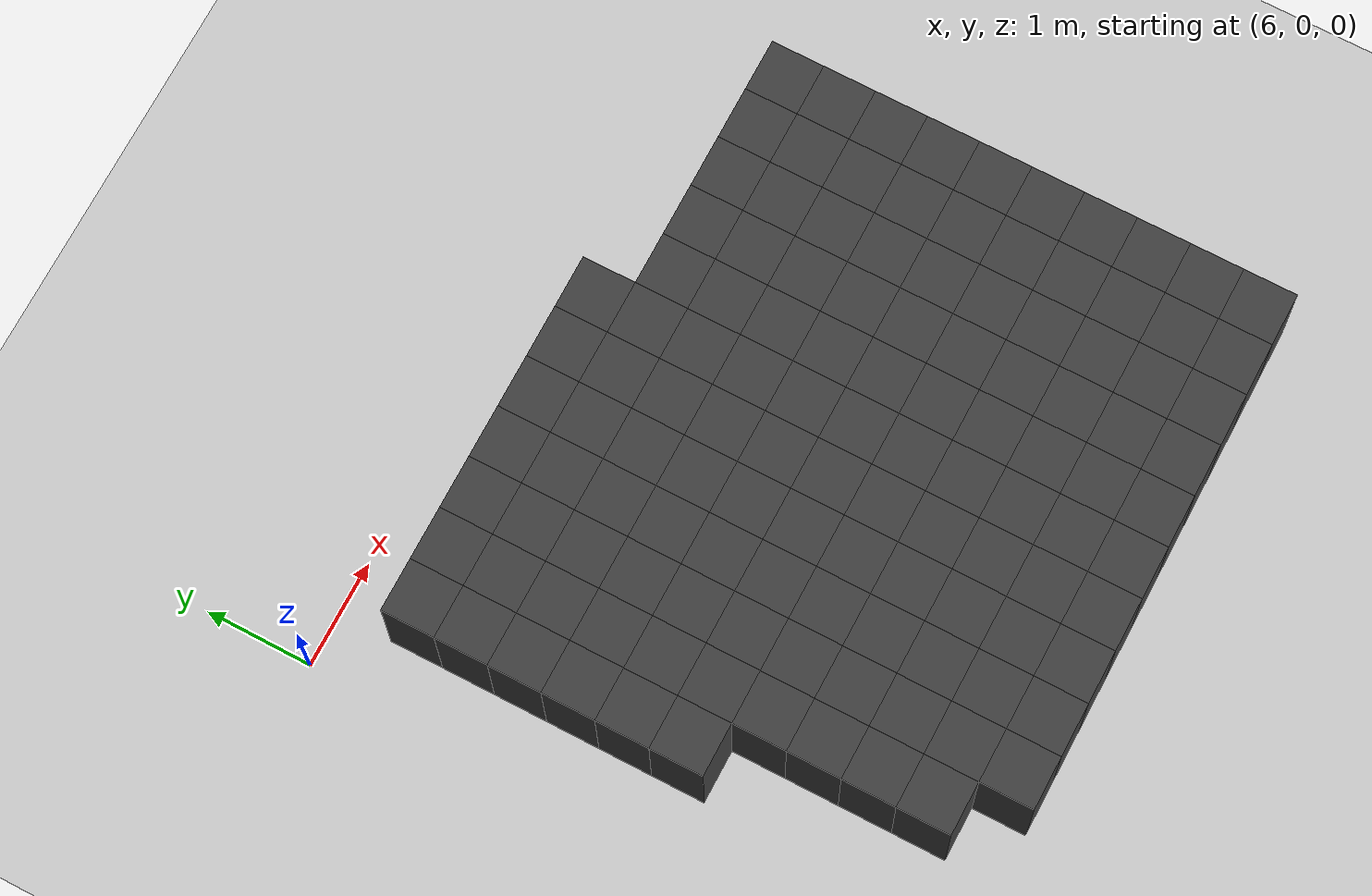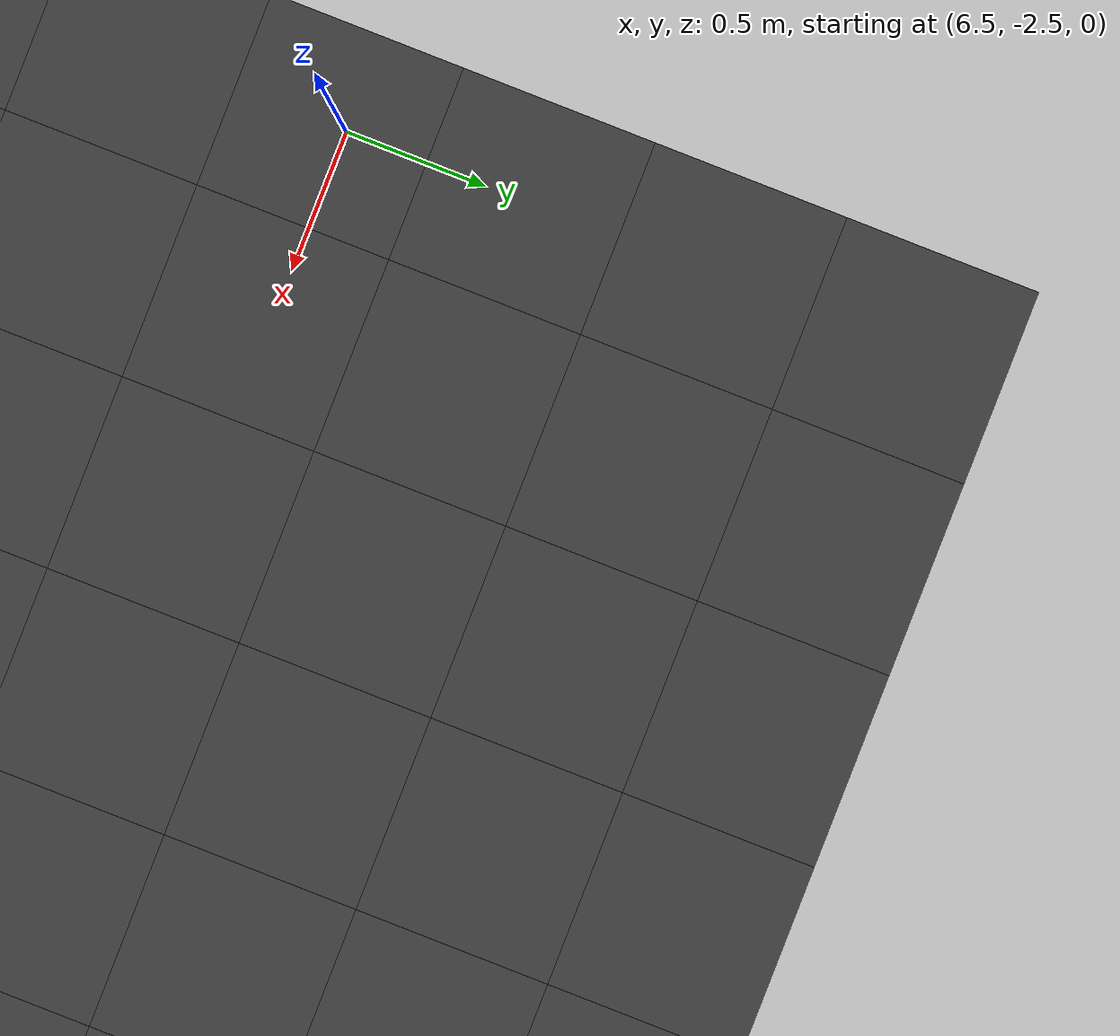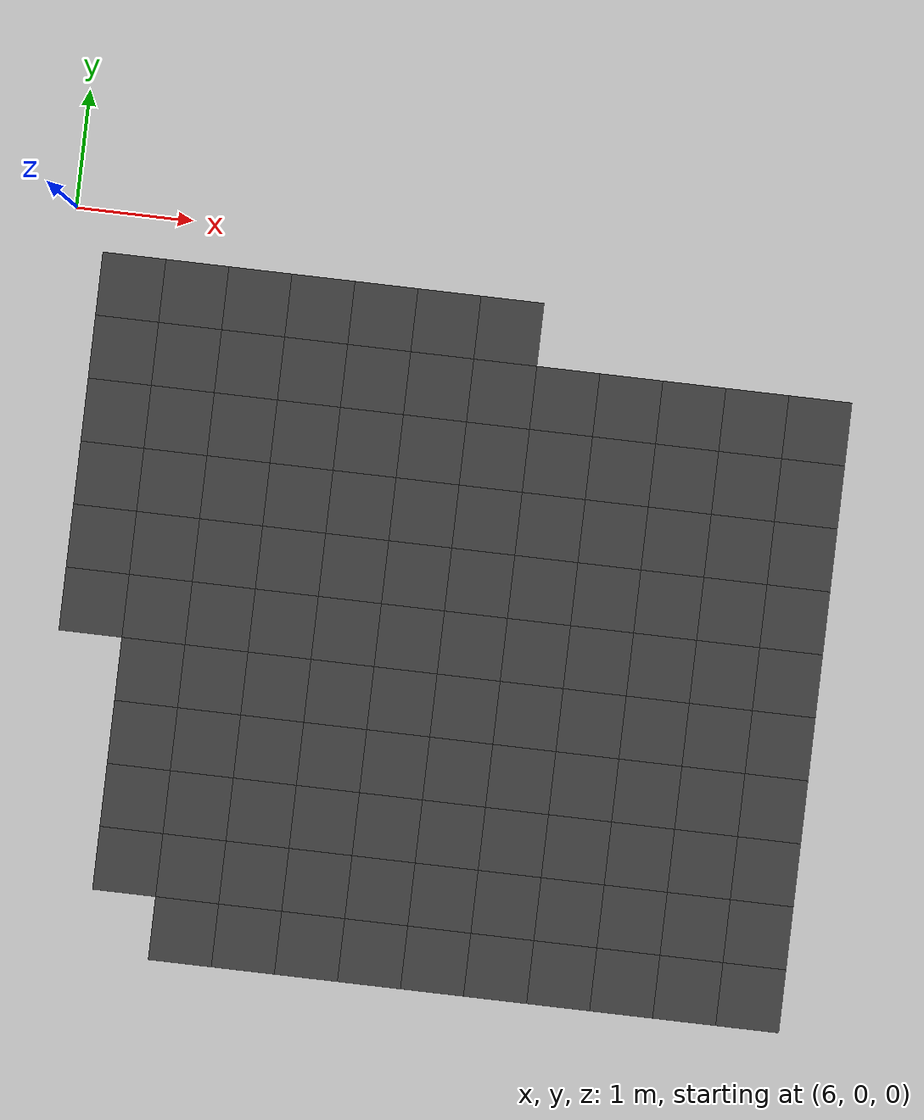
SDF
<sdf version="1.7">
 <world name="map_14510">
  <model name="ground_plane">
   <static>true</static>
   <link name="link">
    <collision name="collision">
     <geometry><plane><normal>0 0 1</normal><size>200 200</size></plane></geometry>
    </collision>
    <visual name="visual">
     <geometry><plane><normal>0 0 1</normal><size>200 200</size></plane></geometry>
     <material><ambient>0.8 0.8 0.8 1</ambient><diffuse>0.8 0.8 0.8 1</diffuse></material>
    </visual>
   </link>
  </model>
  <model name="maze_environment">
   <static>true</static>
   <link name="wall_927">
    <pose>6.750 -0.750 0.500 0 0 0</pose>
    <collision name="col"><geometry><box><size>0.5 0.5 1.0</size></box></geometry></collision>
    <visual name="vis">
     <geometry><box><size>0.5 0.5 1.0</size></box></geometry>
     <material><ambient>0.15 0.15 0.15 1</ambient><diffuse>0.25 0.25 0.25 1</diffuse></material>
    </visual>
   </link>
   <link name="wall_928">
    <pose>7.250 -0.750 0.500 0 0 0</pose>
    <collision name="col"><geometry><box><size>0.5 0.5 1.0</size></box></geometry></collision>
    <visual name="vis">
     <geometry><box><size>0.5 0.5 1.0</size></box></geometry>
     <material><ambient>0.15 0.15 0.15 1</ambient><diffuse>0.25 0.25 0.25 1</diffuse></material>
    </visual>
   </link>
   <link name="wall_929">
    <pose>7.750 -0.750 0.500 0 0 0</pose>
    <collision name="col"><geometry><box><size>0.5 0.5 1.0</size></box></geometry></collision>
    <visual name="vis">
     <geometry><box><size>0.5 0.5 1.0</size></box></geometry>
     <material><ambient>0.15 0.15 0.15 1</ambient><diffuse>0.25 0.25 0.25 1</diffuse></material>
    </visual>
   </link>
   <link name="wall_930">
    <pose>8.250 -0.750 0.500 0 0 0</pose>
    <collision name="col"><geometry><box><size>0.5 0.5 1.0</size></box></geometry></collision>
    <visual name="vis">
     <geometry><box><size>0.5 0.5 1.0</size></box></geometry>
     <material><ambient>0.15 0.15 0.15 1</ambient><diffuse>0.25 0.25 0.25 1</diffuse></material>
    </visual>
   </link>
   <link name="wall_931">
    <pose>8.750 -0.750 0.500 0 0 0</pose>
    <collision name="col"><geometry><box><size>0.5 0.5 1.0</size></box></geometry></collision>
    <visual name="vis">
     <geometry><box><size>0.5 0.5 1.0</size></box></geometry>
     <material><ambient>0.15 0.15 0.15 1</ambient><diffuse>0.25 0.25 0.25 1</diffuse></material>
    </visual>
   </link>
   <link name="wall_932">
    <pose>9.250 -0.750 0.500 0 0 0</pose>
    <collision name="col"><geometry><box><size>0.5 0.5 1.0</size></box></geometry></collision>
    <visual name="vis">
     <geometry><box><size>0.5 0.5 1.0</size></box></geometry>
     <material><ambient>0.15 0.15 0.15 1</ambient><diffuse>0.25 0.25 0.25 1</diffuse></material>
    </visual>
   </link>
   <link name="wall_933">
    <pose>9.750 -0.750 0.500 0 0 0</pose>
    <collision name="col"><geometry><box><size>0.5 0.5 1.0</size></box></geometry></collision>
    <visual name="vis">
     <geometry><box><size>0.5 0.5 1.0</size></box></geometry>
     <material><ambient>0.15 0.15 0.15 1</ambient><diffuse>0.25 0.25 0.25 1</diffuse></material>
    </visual>
   </link>
   <link name="wall_960">
    <pose>6.750 -1.250 0.500 0 0 0</pose>
    <collision name="col"><geometry><box><size>0.5 0.5 1.0</size></box></geometry></collision>
    <visual name="vis">
     <geometry><box><size>0.5 0.5 1.0</size></box></geometry>
     <material><ambient>0.15 0.15 0.15 1</ambient><diffuse>0.25 0.25 0.25 1</diffuse></material>
    </visual>
   </link>
   <link name="wall_961">
    <pose>7.250 -1.250 0.500 0 0 0</pose>
    <collision name="col"><geometry><box><size>0.5 0.5 1.0</size></box></geometry></collision>
    <visual name="vis">
     <geometry><box><size>0.5 0.5 1.0</size></box></geometry>
     <material><ambient>0.15 0.15 0.15 1</ambient><diffuse>0.25 0.25 0.25 1</diffuse></material>
    </visual>
   </link>
   <link name="wall_962">
    <pose>7.750 -1.250 0.500 0 0 0</pose>
    <collision name="col"><geometry><box><size>0.5 0.5 1.0</size></box></geometry></collision>
    <visual name="vis">
     <geometry><box><size>0.5 0.5 1.0</size></box></geometry>
     <material><ambient>0.15 0.15 0.15 1</ambient><diffuse>0.25 0.25 0.25 1</diffuse></material>
    </visual>
   </link>
   <link name="wall_963">
    <pose>8.250 -1.250 0.500 0 0 0</pose>
    <collision name="col"><geometry><box><size>0.5 0.5 1.0</size></box></geometry></collision>
    <visual name="vis">
     <geometry><box><size>0.5 0.5 1.0</size></box></geometry>
     <material><ambient>0.15 0.15 0.15 1</ambient><diffuse>0.25 0.25 0.25 1</diffuse></material>
    </visual>
   </link>
   <link name="wall_964">
    <pose>8.750 -1.250 0.500 0 0 0</pose>
    <collision name="col"><geometry><box><size>0.5 0.5 1.0</size></box></geometry></collision>
    <visual name="vis">
     <geometry><box><size>0.5 0.5 1.0</size></box></geometry>
     <material><ambient>0.15 0.15 0.15 1</ambient><diffuse>0.25 0.25 0.25 1</diffuse></material>
    </visual>
   </link>
   <link name="wall_965">
    <pose>9.250 -1.250 0.500 0 0 0</pose>
    <collision name="col"><geometry><box><size>0.5 0.5 1.0</size></box></geometry></collision>
    <visual name="vis">
     <geometry><box><size>0.5 0.5 1.0</size></box></geometry>
     <material><ambient>0.15 0.15 0.15 1</ambient><diffuse>0.25 0.25 0.25 1</diffuse></material>
    </visual>
   </link>
   <link name="wall_966">
    <pose>9.750 -1.250 0.500 0 0 0</pose>
    <collision name="col"><geometry><box><size>0.5 0.5 1.0</size></box></geometry></collision>
    <visual name="vis">
     <geometry><box><size>0.5 0.5 1.0</size></box></geometry>
     <material><ambient>0.15 0.15 0.15 1</ambient><diffuse>0.25 0.25 0.25 1</diffuse></material>
    </visual>
   </link>
   <link name="wall_967">
    <pose>10.250 -1.250 0.500 0 0 0</pose>
    <collision name="col"><geometry><box><size>0.5 0.5 1.0</size></box></geometry></collision>
    <visual name="vis">
     <geometry><box><size>0.5 0.5 1.0</size></box></geometry>
     <material><ambient>0.15 0.15 0.15 1</ambient><diffuse>0.25 0.25 0.25 1</diffuse></material>
    </visual>
   </link>
   <link name="wall_968">
    <pose>10.750 -1.250 0.500 0 0 0</pose>
    <collision name="col"><geometry><box><size>0.5 0.5 1.0</size></box></geometry></collision>
    <visual name="vis">
     <geometry><box><size>0.5 0.5 1.0</size></box></geometry>
     <material><ambient>0.15 0.15 0.15 1</ambient><diffuse>0.25 0.25 0.25 1</diffuse></material>
    </visual>
   </link>
   <link name="wall_969">
    <pose>11.250 -1.250 0.500 0 0 0</pose>
    <collision name="col"><geometry><box><size>0.5 0.5 1.0</size></box></geometry></collision>
    <visual name="vis">
     <geometry><box><size>0.5 0.5 1.0</size></box></geometry>
     <material><ambient>0.15 0.15 0.15 1</ambient><diffuse>0.25 0.25 0.25 1</diffuse></material>
    </visual>
   </link>
   <link name="wall_970">
    <pose>11.750 -1.250 0.500 0 0 0</pose>
    <collision name="col"><geometry><box><size>0.5 0.5 1.0</size></box></geometry></collision>
    <visual name="vis">
     <geometry><box><size>0.5 0.5 1.0</size></box></geometry>
     <material><ambient>0.15 0.15 0.15 1</ambient><diffuse>0.25 0.25 0.25 1</diffuse></material>
    </visual>
   </link>
   <link name="wall_971">
    <pose>12.250 -1.250 0.500 0 0 0</pose>
    <collision name="col"><geometry><box><size>0.5 0.5 1.0</size></box></geometry></collision>
    <visual name="vis">
     <geometry><box><size>0.5 0.5 1.0</size></box></geometry>
     <material><ambient>0.15 0.15 0.15 1</ambient><diffuse>0.25 0.25 0.25 1</diffuse></material>
    </visual>
   </link>
   <link name="wall_987">
    <pose>6.750 -1.750 0.500 0 0 0</pose>
    <collision name="col"><geometry><box><size>0.5 0.5 1.0</size></box></geometry></collision>
    <visual name="vis">
     <geometry><box><size>0.5 0.5 1.0</size></box></geometry>
     <material><ambient>0.15 0.15 0.15 1</ambient><diffuse>0.25 0.25 0.25 1</diffuse></material>
    </visual>
   </link>
   <link name="wall_988">
    <pose>7.250 -1.750 0.500 0 0 0</pose>
    <collision name="col"><geometry><box><size>0.5 0.5 1.0</size></box></geometry></collision>
    <visual name="vis">
     <geometry><box><size>0.5 0.5 1.0</size></box></geometry>
     <material><ambient>0.15 0.15 0.15 1</ambient><diffuse>0.25 0.25 0.25 1</diffuse></material>
    </visual>
   </link>
   <link name="wall_989">
    <pose>7.750 -1.750 0.500 0 0 0</pose>
    <collision name="col"><geometry><box><size>0.5 0.5 1.0</size></box></geometry></collision>
    <visual name="vis">
     <geometry><box><size>0.5 0.5 1.0</size></box></geometry>
     <material><ambient>0.15 0.15 0.15 1</ambient><diffuse>0.25 0.25 0.25 1</diffuse></material>
    </visual>
   </link>
   <link name="wall_990">
    <pose>8.250 -1.750 0.500 0 0 0</pose>
    <collision name="col"><geometry><box><size>0.5 0.5 1.0</size></box></geometry></collision>
    <visual name="vis">
     <geometry><box><size>0.5 0.5 1.0</size></box></geometry>
     <material><ambient>0.15 0.15 0.15 1</ambient><diffuse>0.25 0.25 0.25 1</diffuse></material>
    </visual>
   </link>
   <link name="wall_991">
    <pose>8.750 -1.750 0.500 0 0 0</pose>
    <collision name="col"><geometry><box><size>0.5 0.5 1.0</size></box></geometry></collision>
    <visual name="vis">
     <geometry><box><size>0.5 0.5 1.0</size></box></geometry>
     <material><ambient>0.15 0.15 0.15 1</ambient><diffuse>0.25 0.25 0.25 1</diffuse></material>
    </visual>
   </link>
   <link name="wall_992">
    <pose>9.250 -1.750 0.500 0 0 0</pose>
    <collision name="col"><geometry><box><size>0.5 0.5 1.0</size></box></geometry></collision>
    <visual name="vis">
     <geometry><box><size>0.5 0.5 1.0</size></box></geometry>
     <material><ambient>0.15 0.15 0.15 1</ambient><diffuse>0.25 0.25 0.25 1</diffuse></material>
    </visual>
   </link>
   <link name="wall_993">
    <pose>9.750 -1.750 0.500 0 0 0</pose>
    <collision name="col"><geometry><box><size>0.5 0.5 1.0</size></box></geometry></collision>
    <visual name="vis">
     <geometry><box><size>0.5 0.5 1.0</size></box></geometry>
     <material><ambient>0.15 0.15 0.15 1</ambient><diffuse>0.25 0.25 0.25 1</diffuse></material>
    </visual>
   </link>
   <link name="wall_994">
    <pose>10.250 -1.750 0.500 0 0 0</pose>
    <collision name="col"><geometry><box><size>0.5 0.5 1.0</size></box></geometry></collision>
    <visual name="vis">
     <geometry><box><size>0.5 0.5 1.0</size></box></geometry>
     <material><ambient>0.15 0.15 0.15 1</ambient><diffuse>0.25 0.25 0.25 1</diffuse></material>
    </visual>
   </link>
   <link name="wall_995">
    <pose>10.750 -1.750 0.500 0 0 0</pose>
    <collision name="col"><geometry><box><size>0.5 0.5 1.0</size></box></geometry></collision>
    <visual name="vis">
     <geometry><box><size>0.5 0.5 1.0</size></box></geometry>
     <material><ambient>0.15 0.15 0.15 1</ambient><diffuse>0.25 0.25 0.25 1</diffuse></material>
    </visual>
   </link>
   <link name="wall_996">
    <pose>11.250 -1.750 0.500 0 0 0</pose>
    <collision name="col"><geometry><box><size>0.5 0.5 1.0</size></box></geometry></collision>
    <visual name="vis">
     <geometry><box><size>0.5 0.5 1.0</size></box></geometry>
     <material><ambient>0.15 0.15 0.15 1</ambient><diffuse>0.25 0.25 0.25 1</diffuse></material>
    </visual>
   </link>
   <link name="wall_997">
    <pose>11.750 -1.750 0.500 0 0 0</pose>
    <collision name="col"><geometry><box><size>0.5 0.5 1.0</size></box></geometry></collision>
    <visual name="vis">
     <geometry><box><size>0.5 0.5 1.0</size></box></geometry>
     <material><ambient>0.15 0.15 0.15 1</ambient><diffuse>0.25 0.25 0.25 1</diffuse></material>
    </visual>
   </link>
   <link name="wall_998">
    <pose>12.250 -1.750 0.500 0 0 0</pose>
    <collision name="col"><geometry><box><size>0.5 0.5 1.0</size></box></geometry></collision>
    <visual name="vis">
     <geometry><box><size>0.5 0.5 1.0</size></box></geometry>
     <material><ambient>0.15 0.15 0.15 1</ambient><diffuse>0.25 0.25 0.25 1</diffuse></material>
    </visual>
   </link>
   <link name="wall_1014">
    <pose>6.750 -2.250 0.500 0 0 0</pose>
    <collision name="col"><geometry><box><size>0.5 0.5 1.0</size></box></geometry></collision>
    <visual name="vis">
     <geometry><box><size>0.5 0.5 1.0</size></box></geometry>
     <material><ambient>0.15 0.15 0.15 1</ambient><diffuse>0.25 0.25 0.25 1</diffuse></material>
    </visual>
   </link>
   <link name="wall_1015">
    <pose>7.250 -2.250 0.500 0 0 0</pose>
    <collision name="col"><geometry><box><size>0.5 0.5 1.0</size></box></geometry></collision>
    <visual name="vis">
     <geometry><box><size>0.5 0.5 1.0</size></box></geometry>
     <material><ambient>0.15 0.15 0.15 1</ambient><diffuse>0.25 0.25 0.25 1</diffuse></material>
    </visual>
   </link>
   <link name="wall_1016">
    <pose>7.750 -2.250 0.500 0 0 0</pose>
    <collision name="col"><geometry><box><size>0.5 0.5 1.0</size></box></geometry></collision>
    <visual name="vis">
     <geometry><box><size>0.5 0.5 1.0</size></box></geometry>
     <material><ambient>0.15 0.15 0.15 1</ambient><diffuse>0.25 0.25 0.25 1</diffuse></material>
    </visual>
   </link>
   <link name="wall_1017">
    <pose>8.250 -2.250 0.500 0 0 0</pose>
    <collision name="col"><geometry><box><size>0.5 0.5 1.0</size></box></geometry></collision>
    <visual name="vis">
     <geometry><box><size>0.5 0.5 1.0</size></box></geometry>
     <material><ambient>0.15 0.15 0.15 1</ambient><diffuse>0.25 0.25 0.25 1</diffuse></material>
    </visual>
   </link>
   <link name="wall_1018">
    <pose>8.750 -2.250 0.500 0 0 0</pose>
    <collision name="col"><geometry><box><size>0.5 0.5 1.0</size></box></geometry></collision>
    <visual name="vis">
     <geometry><box><size>0.5 0.5 1.0</size></box></geometry>
     <material><ambient>0.15 0.15 0.15 1</ambient><diffuse>0.25 0.25 0.25 1</diffuse></material>
    </visual>
   </link>
   <link name="wall_1019">
    <pose>9.250 -2.250 0.500 0 0 0</pose>
    <collision name="col"><geometry><box><size>0.5 0.5 1.0</size></box></geometry></collision>
    <visual name="vis">
     <geometry><box><size>0.5 0.5 1.0</size></box></geometry>
     <material><ambient>0.15 0.15 0.15 1</ambient><diffuse>0.25 0.25 0.25 1</diffuse></material>
    </visual>
   </link>
   <link name="wall_1020">
    <pose>9.750 -2.250 0.500 0 0 0</pose>
    <collision name="col"><geometry><box><size>0.5 0.5 1.0</size></box></geometry></collision>
    <visual name="vis">
     <geometry><box><size>0.5 0.5 1.0</size></box></geometry>
     <material><ambient>0.15 0.15 0.15 1</ambient><diffuse>0.25 0.25 0.25 1</diffuse></material>
    </visual>
   </link>
   <link name="wall_1021">
    <pose>10.250 -2.250 0.500 0 0 0</pose>
    <collision name="col"><geometry><box><size>0.5 0.5 1.0</size></box></geometry></collision>
    <visual name="vis">
     <geometry><box><size>0.5 0.5 1.0</size></box></geometry>
     <material><ambient>0.15 0.15 0.15 1</ambient><diffuse>0.25 0.25 0.25 1</diffuse></material>
    </visual>
   </link>
   <link name="wall_1022">
    <pose>10.750 -2.250 0.500 0 0 0</pose>
    <collision name="col"><geometry><box><size>0.5 0.5 1.0</size></box></geometry></collision>
    <visual name="vis">
     <geometry><box><size>0.5 0.5 1.0</size></box></geometry>
     <material><ambient>0.15 0.15 0.15 1</ambient><diffuse>0.25 0.25 0.25 1</diffuse></material>
    </visual>
   </link>
   <link name="wall_1023">
    <pose>11.250 -2.250 0.500 0 0 0</pose>
    <collision name="col"><geometry><box><size>0.5 0.5 1.0</size></box></geometry></collision>
    <visual name="vis">
     <geometry><box><size>0.5 0.5 1.0</size></box></geometry>
     <material><ambient>0.15 0.15 0.15 1</ambient><diffuse>0.25 0.25 0.25 1</diffuse></material>
    </visual>
   </link>
   <link name="wall_1024">
    <pose>11.750 -2.250 0.500 0 0 0</pose>
    <collision name="col"><geometry><box><size>0.5 0.5 1.0</size></box></geometry></collision>
    <visual name="vis">
     <geometry><box><size>0.5 0.5 1.0</size></box></geometry>
     <material><ambient>0.15 0.15 0.15 1</ambient><diffuse>0.25 0.25 0.25 1</diffuse></material>
    </visual>
   </link>
   <link name="wall_1025">
    <pose>12.250 -2.250 0.500 0 0 0</pose>
    <collision name="col"><geometry><box><size>0.5 0.5 1.0</size></box></geometry></collision>
    <visual name="vis">
     <geometry><box><size>0.5 0.5 1.0</size></box></geometry>
     <material><ambient>0.15 0.15 0.15 1</ambient><diffuse>0.25 0.25 0.25 1</diffuse></material>
    </visual>
   </link>
   <link name="wall_1042">
    <pose>6.750 -2.750 0.500 0 0 0</pose>
    <collision name="col"><geometry><box><size>0.5 0.5 1.0</size></box></geometry></collision>
    <visual name="vis">
     <geometry><box><size>0.5 0.5 1.0</size></box></geometry>
     <material><ambient>0.15 0.15 0.15 1</ambient><diffuse>0.25 0.25 0.25 1</diffuse></material>
    </visual>
   </link>
   <link name="wall_1043">
    <pose>7.250 -2.750 0.500 0 0 0</pose>
    <collision name="col"><geometry><box><size>0.5 0.5 1.0</size></box></geometry></collision>
    <visual name="vis">
     <geometry><box><size>0.5 0.5 1.0</size></box></geometry>
     <material><ambient>0.15 0.15 0.15 1</ambient><diffuse>0.25 0.25 0.25 1</diffuse></material>
    </visual>
   </link>
   <link name="wall_1044">
    <pose>7.750 -2.750 0.500 0 0 0</pose>
    <collision name="col"><geometry><box><size>0.5 0.5 1.0</size></box></geometry></collision>
    <visual name="vis">
     <geometry><box><size>0.5 0.5 1.0</size></box></geometry>
     <material><ambient>0.15 0.15 0.15 1</ambient><diffuse>0.25 0.25 0.25 1</diffuse></material>
    </visual>
   </link>
   <link name="wall_1045">
    <pose>8.250 -2.750 0.500 0 0 0</pose>
    <collision name="col"><geometry><box><size>0.5 0.5 1.0</size></box></geometry></collision>
    <visual name="vis">
     <geometry><box><size>0.5 0.5 1.0</size></box></geometry>
     <material><ambient>0.15 0.15 0.15 1</ambient><diffuse>0.25 0.25 0.25 1</diffuse></material>
    </visual>
   </link>
   <link name="wall_1046">
    <pose>8.750 -2.750 0.500 0 0 0</pose>
    <collision name="col"><geometry><box><size>0.5 0.5 1.0</size></box></geometry></collision>
    <visual name="vis">
     <geometry><box><size>0.5 0.5 1.0</size></box></geometry>
     <material><ambient>0.15 0.15 0.15 1</ambient><diffuse>0.25 0.25 0.25 1</diffuse></material>
    </visual>
   </link>
   <link name="wall_1047">
    <pose>9.250 -2.750 0.500 0 0 0</pose>
    <collision name="col"><geometry><box><size>0.5 0.5 1.0</size></box></geometry></collision>
    <visual name="vis">
     <geometry><box><size>0.5 0.5 1.0</size></box></geometry>
     <material><ambient>0.15 0.15 0.15 1</ambient><diffuse>0.25 0.25 0.25 1</diffuse></material>
    </visual>
   </link>
   <link name="wall_1048">
    <pose>9.750 -2.750 0.500 0 0 0</pose>
    <collision name="col"><geometry><box><size>0.5 0.5 1.0</size></box></geometry></collision>
    <visual name="vis">
     <geometry><box><size>0.5 0.5 1.0</size></box></geometry>
     <material><ambient>0.15 0.15 0.15 1</ambient><diffuse>0.25 0.25 0.25 1</diffuse></material>
    </visual>
   </link>
   <link name="wall_1049">
    <pose>10.250 -2.750 0.500 0 0 0</pose>
    <collision name="col"><geometry><box><size>0.5 0.5 1.0</size></box></geometry></collision>
    <visual name="vis">
     <geometry><box><size>0.5 0.5 1.0</size></box></geometry>
     <material><ambient>0.15 0.15 0.15 1</ambient><diffuse>0.25 0.25 0.25 1</diffuse></material>
    </visual>
   </link>
   <link name="wall_1050">
    <pose>10.750 -2.750 0.500 0 0 0</pose>
    <collision name="col"><geometry><box><size>0.5 0.5 1.0</size></box></geometry></collision>
    <visual name="vis">
     <geometry><box><size>0.5 0.5 1.0</size></box></geometry>
     <material><ambient>0.15 0.15 0.15 1</ambient><diffuse>0.25 0.25 0.25 1</diffuse></material>
    </visual>
   </link>
   <link name="wall_1051">
    <pose>11.250 -2.750 0.500 0 0 0</pose>
    <collision name="col"><geometry><box><size>0.5 0.5 1.0</size></box></geometry></collision>
    <visual name="vis">
     <geometry><box><size>0.5 0.5 1.0</size></box></geometry>
     <material><ambient>0.15 0.15 0.15 1</ambient><diffuse>0.25 0.25 0.25 1</diffuse></material>
    </visual>
   </link>
   <link name="wall_1052">
    <pose>11.750 -2.750 0.500 0 0 0</pose>
    <collision name="col"><geometry><box><size>0.5 0.5 1.0</size></box></geometry></collision>
    <visual name="vis">
     <geometry><box><size>0.5 0.5 1.0</size></box></geometry>
     <material><ambient>0.15 0.15 0.15 1</ambient><diffuse>0.25 0.25 0.25 1</diffuse></material>
    </visual>
   </link>
   <link name="wall_1053">
    <pose>12.250 -2.750 0.500 0 0 0</pose>
    <collision name="col"><geometry><box><size>0.5 0.5 1.0</size></box></geometry></collision>
    <visual name="vis">
     <geometry><box><size>0.5 0.5 1.0</size></box></geometry>
     <material><ambient>0.15 0.15 0.15 1</ambient><diffuse>0.25 0.25 0.25 1</diffuse></material>
    </visual>
   </link>
   <link name="wall_1078">
    <pose>6.750 -3.250 0.500 0 0 0</pose>
    <collision name="col"><geometry><box><size>0.5 0.5 1.0</size></box></geometry></collision>
    <visual name="vis">
     <geometry><box><size>0.5 0.5 1.0</size></box></geometry>
     <material><ambient>0.15 0.15 0.15 1</ambient><diffuse>0.25 0.25 0.25 1</diffuse></material>
    </visual>
   </link>
   <link name="wall_1079">
    <pose>7.250 -3.250 0.500 0 0 0</pose>
    <collision name="col"><geometry><box><size>0.5 0.5 1.0</size></box></geometry></collision>
    <visual name="vis">
     <geometry><box><size>0.5 0.5 1.0</size></box></geometry>
     <material><ambient>0.15 0.15 0.15 1</ambient><diffuse>0.25 0.25 0.25 1</diffuse></material>
    </visual>
   </link>
   <link name="wall_1080">
    <pose>7.750 -3.250 0.500 0 0 0</pose>
    <collision name="col"><geometry><box><size>0.5 0.5 1.0</size></box></geometry></collision>
    <visual name="vis">
     <geometry><box><size>0.5 0.5 1.0</size></box></geometry>
     <material><ambient>0.15 0.15 0.15 1</ambient><diffuse>0.25 0.25 0.25 1</diffuse></material>
    </visual>
   </link>
   <link name="wall_1081">
    <pose>8.250 -3.250 0.500 0 0 0</pose>
    <collision name="col"><geometry><box><size>0.5 0.5 1.0</size></box></geometry></collision>
    <visual name="vis">
     <geometry><box><size>0.5 0.5 1.0</size></box></geometry>
     <material><ambient>0.15 0.15 0.15 1</ambient><diffuse>0.25 0.25 0.25 1</diffuse></material>
    </visual>
   </link>
   <link name="wall_1082">
    <pose>8.750 -3.250 0.500 0 0 0</pose>
    <collision name="col"><geometry><box><size>0.5 0.5 1.0</size></box></geometry></collision>
    <visual name="vis">
     <geometry><box><size>0.5 0.5 1.0</size></box></geometry>
     <material><ambient>0.15 0.15 0.15 1</ambient><diffuse>0.25 0.25 0.25 1</diffuse></material>
    </visual>
   </link>
   <link name="wall_1083">
    <pose>9.250 -3.250 0.500 0 0 0</pose>
    <collision name="col"><geometry><box><size>0.5 0.5 1.0</size></box></geometry></collision>
    <visual name="vis">
     <geometry><box><size>0.5 0.5 1.0</size></box></geometry>
     <material><ambient>0.15 0.15 0.15 1</ambient><diffuse>0.25 0.25 0.25 1</diffuse></material>
    </visual>
   </link>
   <link name="wall_1084">
    <pose>9.750 -3.250 0.500 0 0 0</pose>
    <collision name="col"><geometry><box><size>0.5 0.5 1.0</size></box></geometry></collision>
    <visual name="vis">
     <geometry><box><size>0.5 0.5 1.0</size></box></geometry>
     <material><ambient>0.15 0.15 0.15 1</ambient><diffuse>0.25 0.25 0.25 1</diffuse></material>
    </visual>
   </link>
   <link name="wall_1085">
    <pose>10.250 -3.250 0.500 0 0 0</pose>
    <collision name="col"><geometry><box><size>0.5 0.5 1.0</size></box></geometry></collision>
    <visual name="vis">
     <geometry><box><size>0.5 0.5 1.0</size></box></geometry>
     <material><ambient>0.15 0.15 0.15 1</ambient><diffuse>0.25 0.25 0.25 1</diffuse></material>
    </visual>
   </link>
   <link name="wall_1086">
    <pose>10.750 -3.250 0.500 0 0 0</pose>
    <collision name="col"><geometry><box><size>0.5 0.5 1.0</size></box></geometry></collision>
    <visual name="vis">
     <geometry><box><size>0.5 0.5 1.0</size></box></geometry>
     <material><ambient>0.15 0.15 0.15 1</ambient><diffuse>0.25 0.25 0.25 1</diffuse></material>
    </visual>
   </link>
   <link name="wall_1087">
    <pose>11.250 -3.250 0.500 0 0 0</pose>
    <collision name="col"><geometry><box><size>0.5 0.5 1.0</size></box></geometry></collision>
    <visual name="vis">
     <geometry><box><size>0.5 0.5 1.0</size></box></geometry>
     <material><ambient>0.15 0.15 0.15 1</ambient><diffuse>0.25 0.25 0.25 1</diffuse></material>
    </visual>
   </link>
   <link name="wall_1088">
    <pose>11.750 -3.250 0.500 0 0 0</pose>
    <collision name="col"><geometry><box><size>0.5 0.5 1.0</size></box></geometry></collision>
    <visual name="vis">
     <geometry><box><size>0.5 0.5 1.0</size></box></geometry>
     <material><ambient>0.15 0.15 0.15 1</ambient><diffuse>0.25 0.25 0.25 1</diffuse></material>
    </visual>
   </link>
   <link name="wall_1089">
    <pose>12.250 -3.250 0.500 0 0 0</pose>
    <collision name="col"><geometry><box><size>0.5 0.5 1.0</size></box></geometry></collision>
    <visual name="vis">
     <geometry><box><size>0.5 0.5 1.0</size></box></geometry>
     <material><ambient>0.15 0.15 0.15 1</ambient><diffuse>0.25 0.25 0.25 1</diffuse></material>
    </visual>
   </link>
   <link name="wall_1115">
    <pose>7.250 -3.750 0.500 0 0 0</pose>
    <collision name="col"><geometry><box><size>0.5 0.5 1.0</size></box></geometry></collision>
    <visual name="vis">
     <geometry><box><size>0.5 0.5 1.0</size></box></geometry>
     <material><ambient>0.15 0.15 0.15 1</ambient><diffuse>0.25 0.25 0.25 1</diffuse></material>
    </visual>
   </link>
   <link name="wall_1116">
    <pose>7.750 -3.750 0.500 0 0 0</pose>
    <collision name="col"><geometry><box><size>0.5 0.5 1.0</size></box></geometry></collision>
    <visual name="vis">
     <geometry><box><size>0.5 0.5 1.0</size></box></geometry>
     <material><ambient>0.15 0.15 0.15 1</ambient><diffuse>0.25 0.25 0.25 1</diffuse></material>
    </visual>
   </link>
   <link name="wall_1117">
    <pose>8.250 -3.750 0.500 0 0 0</pose>
    <collision name="col"><geometry><box><size>0.5 0.5 1.0</size></box></geometry></collision>
    <visual name="vis">
     <geometry><box><size>0.5 0.5 1.0</size></box></geometry>
     <material><ambient>0.15 0.15 0.15 1</ambient><diffuse>0.25 0.25 0.25 1</diffuse></material>
    </visual>
   </link>
   <link name="wall_1118">
    <pose>8.750 -3.750 0.500 0 0 0</pose>
    <collision name="col"><geometry><box><size>0.5 0.5 1.0</size></box></geometry></collision>
    <visual name="vis">
     <geometry><box><size>0.5 0.5 1.0</size></box></geometry>
     <material><ambient>0.15 0.15 0.15 1</ambient><diffuse>0.25 0.25 0.25 1</diffuse></material>
    </visual>
   </link>
   <link name="wall_1119">
    <pose>9.250 -3.750 0.500 0 0 0</pose>
    <collision name="col"><geometry><box><size>0.5 0.5 1.0</size></box></geometry></collision>
    <visual name="vis">
     <geometry><box><size>0.5 0.5 1.0</size></box></geometry>
     <material><ambient>0.15 0.15 0.15 1</ambient><diffuse>0.25 0.25 0.25 1</diffuse></material>
    </visual>
   </link>
   <link name="wall_1120">
    <pose>9.750 -3.750 0.500 0 0 0</pose>
    <collision name="col"><geometry><box><size>0.5 0.5 1.0</size></box></geometry></collision>
    <visual name="vis">
     <geometry><box><size>0.5 0.5 1.0</size></box></geometry>
     <material><ambient>0.15 0.15 0.15 1</ambient><diffuse>0.25 0.25 0.25 1</diffuse></material>
    </visual>
   </link>
   <link name="wall_1121">
    <pose>10.250 -3.750 0.500 0 0 0</pose>
    <collision name="col"><geometry><box><size>0.5 0.5 1.0</size></box></geometry></collision>
    <visual name="vis">
     <geometry><box><size>0.5 0.5 1.0</size></box></geometry>
     <material><ambient>0.15 0.15 0.15 1</ambient><diffuse>0.25 0.25 0.25 1</diffuse></material>
    </visual>
   </link>
   <link name="wall_1122">
    <pose>10.750 -3.750 0.500 0 0 0</pose>
    <collision name="col"><geometry><box><size>0.5 0.5 1.0</size></box></geometry></collision>
    <visual name="vis">
     <geometry><box><size>0.5 0.5 1.0</size></box></geometry>
     <material><ambient>0.15 0.15 0.15 1</ambient><diffuse>0.25 0.25 0.25 1</diffuse></material>
    </visual>
   </link>
   <link name="wall_1123">
    <pose>11.250 -3.750 0.500 0 0 0</pose>
    <collision name="col"><geometry><box><size>0.5 0.5 1.0</size></box></geometry></collision>
    <visual name="vis">
     <geometry><box><size>0.5 0.5 1.0</size></box></geometry>
     <material><ambient>0.15 0.15 0.15 1</ambient><diffuse>0.25 0.25 0.25 1</diffuse></material>
    </visual>
   </link>
   <link name="wall_1124">
    <pose>11.750 -3.750 0.500 0 0 0</pose>
    <collision name="col"><geometry><box><size>0.5 0.5 1.0</size></box></geometry></collision>
    <visual name="vis">
     <geometry><box><size>0.5 0.5 1.0</size></box></geometry>
     <material><ambient>0.15 0.15 0.15 1</ambient><diffuse>0.25 0.25 0.25 1</diffuse></material>
    </visual>
   </link>
   <link name="wall_1125">
    <pose>12.250 -3.750 0.500 0 0 0</pose>
    <collision name="col"><geometry><box><size>0.5 0.5 1.0</size></box></geometry></collision>
    <visual name="vis">
     <geometry><box><size>0.5 0.5 1.0</size></box></geometry>
     <material><ambient>0.15 0.15 0.15 1</ambient><diffuse>0.25 0.25 0.25 1</diffuse></material>
    </visual>
   </link>
   <link name="wall_1156">
    <pose>7.250 -4.250 0.500 0 0 0</pose>
    <collision name="col"><geometry><box><size>0.5 0.5 1.0</size></box></geometry></collision>
    <visual name="vis">
     <geometry><box><size>0.5 0.5 1.0</size></box></geometry>
     <material><ambient>0.15 0.15 0.15 1</ambient><diffuse>0.25 0.25 0.25 1</diffuse></material>
    </visual>
   </link>
   <link name="wall_1157">
    <pose>7.750 -4.250 0.500 0 0 0</pose>
    <collision name="col"><geometry><box><size>0.5 0.5 1.0</size></box></geometry></collision>
    <visual name="vis">
     <geometry><box><size>0.5 0.5 1.0</size></box></geometry>
     <material><ambient>0.15 0.15 0.15 1</ambient><diffuse>0.25 0.25 0.25 1</diffuse></material>
    </visual>
   </link>
   <link name="wall_1158">
    <pose>8.250 -4.250 0.500 0 0 0</pose>
    <collision name="col"><geometry><box><size>0.5 0.5 1.0</size></box></geometry></collision>
    <visual name="vis">
     <geometry><box><size>0.5 0.5 1.0</size></box></geometry>
     <material><ambient>0.15 0.15 0.15 1</ambient><diffuse>0.25 0.25 0.25 1</diffuse></material>
    </visual>
   </link>
   <link name="wall_1159">
    <pose>8.750 -4.250 0.500 0 0 0</pose>
    <collision name="col"><geometry><box><size>0.5 0.5 1.0</size></box></geometry></collision>
    <visual name="vis">
     <geometry><box><size>0.5 0.5 1.0</size></box></geometry>
     <material><ambient>0.15 0.15 0.15 1</ambient><diffuse>0.25 0.25 0.25 1</diffuse></material>
    </visual>
   </link>
   <link name="wall_1160">
    <pose>9.250 -4.250 0.500 0 0 0</pose>
    <collision name="col"><geometry><box><size>0.5 0.5 1.0</size></box></geometry></collision>
    <visual name="vis">
     <geometry><box><size>0.5 0.5 1.0</size></box></geometry>
     <material><ambient>0.15 0.15 0.15 1</ambient><diffuse>0.25 0.25 0.25 1</diffuse></material>
    </visual>
   </link>
   <link name="wall_1161">
    <pose>9.750 -4.250 0.500 0 0 0</pose>
    <collision name="col"><geometry><box><size>0.5 0.5 1.0</size></box></geometry></collision>
    <visual name="vis">
     <geometry><box><size>0.5 0.5 1.0</size></box></geometry>
     <material><ambient>0.15 0.15 0.15 1</ambient><diffuse>0.25 0.25 0.25 1</diffuse></material>
    </visual>
   </link>
   <link name="wall_1162">
    <pose>10.250 -4.250 0.500 0 0 0</pose>
    <collision name="col"><geometry><box><size>0.5 0.5 1.0</size></box></geometry></collision>
    <visual name="vis">
     <geometry><box><size>0.5 0.5 1.0</size></box></geometry>
     <material><ambient>0.15 0.15 0.15 1</ambient><diffuse>0.25 0.25 0.25 1</diffuse></material>
    </visual>
   </link>
   <link name="wall_1163">
    <pose>10.750 -4.250 0.500 0 0 0</pose>
    <collision name="col"><geometry><box><size>0.5 0.5 1.0</size></box></geometry></collision>
    <visual name="vis">
     <geometry><box><size>0.5 0.5 1.0</size></box></geometry>
     <material><ambient>0.15 0.15 0.15 1</ambient><diffuse>0.25 0.25 0.25 1</diffuse></material>
    </visual>
   </link>
   <link name="wall_1164">
    <pose>11.250 -4.250 0.500 0 0 0</pose>
    <collision name="col"><geometry><box><size>0.5 0.5 1.0</size></box></geometry></collision>
    <visual name="vis">
     <geometry><box><size>0.5 0.5 1.0</size></box></geometry>
     <material><ambient>0.15 0.15 0.15 1</ambient><diffuse>0.25 0.25 0.25 1</diffuse></material>
    </visual>
   </link>
   <link name="wall_1165">
    <pose>11.750 -4.250 0.500 0 0 0</pose>
    <collision name="col"><geometry><box><size>0.5 0.5 1.0</size></box></geometry></collision>
    <visual name="vis">
     <geometry><box><size>0.5 0.5 1.0</size></box></geometry>
     <material><ambient>0.15 0.15 0.15 1</ambient><diffuse>0.25 0.25 0.25 1</diffuse></material>
    </visual>
   </link>
   <link name="wall_1166">
    <pose>12.250 -4.250 0.500 0 0 0</pose>
    <collision name="col"><geometry><box><size>0.5 0.5 1.0</size></box></geometry></collision>
    <visual name="vis">
     <geometry><box><size>0.5 0.5 1.0</size></box></geometry>
     <material><ambient>0.15 0.15 0.15 1</ambient><diffuse>0.25 0.25 0.25 1</diffuse></material>
    </visual>
   </link>
   <link name="wall_1204">
    <pose>7.250 -4.750 0.500 0 0 0</pose>
    <collision name="col"><geometry><box><size>0.5 0.5 1.0</size></box></geometry></collision>
    <visual name="vis">
     <geometry><box><size>0.5 0.5 1.0</size></box></geometry>
     <material><ambient>0.15 0.15 0.15 1</ambient><diffuse>0.25 0.25 0.25 1</diffuse></material>
    </visual>
   </link>
   <link name="wall_1205">
    <pose>7.750 -4.750 0.500 0 0 0</pose>
    <collision name="col"><geometry><box><size>0.5 0.5 1.0</size></box></geometry></collision>
    <visual name="vis">
     <geometry><box><size>0.5 0.5 1.0</size></box></geometry>
     <material><ambient>0.15 0.15 0.15 1</ambient><diffuse>0.25 0.25 0.25 1</diffuse></material>
    </visual>
   </link>
   <link name="wall_1206">
    <pose>8.250 -4.750 0.500 0 0 0</pose>
    <collision name="col"><geometry><box><size>0.5 0.5 1.0</size></box></geometry></collision>
    <visual name="vis">
     <geometry><box><size>0.5 0.5 1.0</size></box></geometry>
     <material><ambient>0.15 0.15 0.15 1</ambient><diffuse>0.25 0.25 0.25 1</diffuse></material>
    </visual>
   </link>
   <link name="wall_1207">
    <pose>8.750 -4.750 0.500 0 0 0</pose>
    <collision name="col"><geometry><box><size>0.5 0.5 1.0</size></box></geometry></collision>
    <visual name="vis">
     <geometry><box><size>0.5 0.5 1.0</size></box></geometry>
     <material><ambient>0.15 0.15 0.15 1</ambient><diffuse>0.25 0.25 0.25 1</diffuse></material>
    </visual>
   </link>
   <link name="wall_1208">
    <pose>9.250 -4.750 0.500 0 0 0</pose>
    <collision name="col"><geometry><box><size>0.5 0.5 1.0</size></box></geometry></collision>
    <visual name="vis">
     <geometry><box><size>0.5 0.5 1.0</size></box></geometry>
     <material><ambient>0.15 0.15 0.15 1</ambient><diffuse>0.25 0.25 0.25 1</diffuse></material>
    </visual>
   </link>
   <link name="wall_1209">
    <pose>9.750 -4.750 0.500 0 0 0</pose>
    <collision name="col"><geometry><box><size>0.5 0.5 1.0</size></box></geometry></collision>
    <visual name="vis">
     <geometry><box><size>0.5 0.5 1.0</size></box></geometry>
     <material><ambient>0.15 0.15 0.15 1</ambient><diffuse>0.25 0.25 0.25 1</diffuse></material>
    </visual>
   </link>
   <link name="wall_1210">
    <pose>10.250 -4.750 0.500 0 0 0</pose>
    <collision name="col"><geometry><box><size>0.5 0.5 1.0</size></box></geometry></collision>
    <visual name="vis">
     <geometry><box><size>0.5 0.5 1.0</size></box></geometry>
     <material><ambient>0.15 0.15 0.15 1</ambient><diffuse>0.25 0.25 0.25 1</diffuse></material>
    </visual>
   </link>
   <link name="wall_1211">
    <pose>10.750 -4.750 0.500 0 0 0</pose>
    <collision name="col"><geometry><box><size>0.5 0.5 1.0</size></box></geometry></collision>
    <visual name="vis">
     <geometry><box><size>0.5 0.5 1.0</size></box></geometry>
     <material><ambient>0.15 0.15 0.15 1</ambient><diffuse>0.25 0.25 0.25 1</diffuse></material>
    </visual>
   </link>
   <link name="wall_1212">
    <pose>11.250 -4.750 0.500 0 0 0</pose>
    <collision name="col"><geometry><box><size>0.5 0.5 1.0</size></box></geometry></collision>
    <visual name="vis">
     <geometry><box><size>0.5 0.5 1.0</size></box></geometry>
     <material><ambient>0.15 0.15 0.15 1</ambient><diffuse>0.25 0.25 0.25 1</diffuse></material>
    </visual>
   </link>
   <link name="wall_1213">
    <pose>11.750 -4.750 0.500 0 0 0</pose>
    <collision name="col"><geometry><box><size>0.5 0.5 1.0</size></box></geometry></collision>
    <visual name="vis">
     <geometry><box><size>0.5 0.5 1.0</size></box></geometry>
     <material><ambient>0.15 0.15 0.15 1</ambient><diffuse>0.25 0.25 0.25 1</diffuse></material>
    </visual>
   </link>
   <link name="wall_1214">
    <pose>12.250 -4.750 0.500 0 0 0</pose>
    <collision name="col"><geometry><box><size>0.5 0.5 1.0</size></box></geometry></collision>
    <visual name="vis">
     <geometry><box><size>0.5 0.5 1.0</size></box></geometry>
     <material><ambient>0.15 0.15 0.15 1</ambient><diffuse>0.25 0.25 0.25 1</diffuse></material>
    </visual>
   </link>
   <link name="wall_1252">
    <pose>7.250 -5.250 0.500 0 0 0</pose>
    <collision name="col"><geometry><box><size>0.5 0.5 1.0</size></box></geometry></collision>
    <visual name="vis">
     <geometry><box><size>0.5 0.5 1.0</size></box></geometry>
     <material><ambient>0.15 0.15 0.15 1</ambient><diffuse>0.25 0.25 0.25 1</diffuse></material>
    </visual>
   </link>
   <link name="wall_1253">
    <pose>7.750 -5.250 0.500 0 0 0</pose>
    <collision name="col"><geometry><box><size>0.5 0.5 1.0</size></box></geometry></collision>
    <visual name="vis">
     <geometry><box><size>0.5 0.5 1.0</size></box></geometry>
     <material><ambient>0.15 0.15 0.15 1</ambient><diffuse>0.25 0.25 0.25 1</diffuse></material>
    </visual>
   </link>
   <link name="wall_1254">
    <pose>8.250 -5.250 0.500 0 0 0</pose>
    <collision name="col"><geometry><box><size>0.5 0.5 1.0</size></box></geometry></collision>
    <visual name="vis">
     <geometry><box><size>0.5 0.5 1.0</size></box></geometry>
     <material><ambient>0.15 0.15 0.15 1</ambient><diffuse>0.25 0.25 0.25 1</diffuse></material>
    </visual>
   </link>
   <link name="wall_1255">
    <pose>8.750 -5.250 0.500 0 0 0</pose>
    <collision name="col"><geometry><box><size>0.5 0.5 1.0</size></box></geometry></collision>
    <visual name="vis">
     <geometry><box><size>0.5 0.5 1.0</size></box></geometry>
     <material><ambient>0.15 0.15 0.15 1</ambient><diffuse>0.25 0.25 0.25 1</diffuse></material>
    </visual>
   </link>
   <link name="wall_1256">
    <pose>9.250 -5.250 0.500 0 0 0</pose>
    <collision name="col"><geometry><box><size>0.5 0.5 1.0</size></box></geometry></collision>
    <visual name="vis">
     <geometry><box><size>0.5 0.5 1.0</size></box></geometry>
     <material><ambient>0.15 0.15 0.15 1</ambient><diffuse>0.25 0.25 0.25 1</diffuse></material>
    </visual>
   </link>
   <link name="wall_1257">
    <pose>9.750 -5.250 0.500 0 0 0</pose>
    <collision name="col"><geometry><box><size>0.5 0.5 1.0</size></box></geometry></collision>
    <visual name="vis">
     <geometry><box><size>0.5 0.5 1.0</size></box></geometry>
     <material><ambient>0.15 0.15 0.15 1</ambient><diffuse>0.25 0.25 0.25 1</diffuse></material>
    </visual>
   </link>
   <link name="wall_1258">
    <pose>10.250 -5.250 0.500 0 0 0</pose>
    <collision name="col"><geometry><box><size>0.5 0.5 1.0</size></box></geometry></collision>
    <visual name="vis">
     <geometry><box><size>0.5 0.5 1.0</size></box></geometry>
     <material><ambient>0.15 0.15 0.15 1</ambient><diffuse>0.25 0.25 0.25 1</diffuse></material>
    </visual>
   </link>
   <link name="wall_1259">
    <pose>10.750 -5.250 0.500 0 0 0</pose>
    <collision name="col"><geometry><box><size>0.5 0.5 1.0</size></box></geometry></collision>
    <visual name="vis">
     <geometry><box><size>0.5 0.5 1.0</size></box></geometry>
     <material><ambient>0.15 0.15 0.15 1</ambient><diffuse>0.25 0.25 0.25 1</diffuse></material>
    </visual>
   </link>
   <link name="wall_1260">
    <pose>11.250 -5.250 0.500 0 0 0</pose>
    <collision name="col"><geometry><box><size>0.5 0.5 1.0</size></box></geometry></collision>
    <visual name="vis">
     <geometry><box><size>0.5 0.5 1.0</size></box></geometry>
     <material><ambient>0.15 0.15 0.15 1</ambient><diffuse>0.25 0.25 0.25 1</diffuse></material>
    </visual>
   </link>
   <link name="wall_1261">
    <pose>11.750 -5.250 0.500 0 0 0</pose>
    <collision name="col"><geometry><box><size>0.5 0.5 1.0</size></box></geometry></collision>
    <visual name="vis">
     <geometry><box><size>0.5 0.5 1.0</size></box></geometry>
     <material><ambient>0.15 0.15 0.15 1</ambient><diffuse>0.25 0.25 0.25 1</diffuse></material>
    </visual>
   </link>
   <link name="wall_1262">
    <pose>12.250 -5.250 0.500 0 0 0</pose>
    <collision name="col"><geometry><box><size>0.5 0.5 1.0</size></box></geometry></collision>
    <visual name="vis">
     <geometry><box><size>0.5 0.5 1.0</size></box></geometry>
     <material><ambient>0.15 0.15 0.15 1</ambient><diffuse>0.25 0.25 0.25 1</diffuse></material>
    </visual>
   </link>
   <link name="wall_1294">
    <pose>7.750 -5.750 0.500 0 0 0</pose>
    <collision name="col"><geometry><box><size>0.5 0.5 1.0</size></box></geometry></collision>
    <visual name="vis">
     <geometry><box><size>0.5 0.5 1.0</size></box></geometry>
     <material><ambient>0.15 0.15 0.15 1</ambient><diffuse>0.25 0.25 0.25 1</diffuse></material>
    </visual>
   </link>
   <link name="wall_1295">
    <pose>8.250 -5.750 0.500 0 0 0</pose>
    <collision name="col"><geometry><box><size>0.5 0.5 1.0</size></box></geometry></collision>
    <visual name="vis">
     <geometry><box><size>0.5 0.5 1.0</size></box></geometry>
     <material><ambient>0.15 0.15 0.15 1</ambient><diffuse>0.25 0.25 0.25 1</diffuse></material>
    </visual>
   </link>
   <link name="wall_1296">
    <pose>8.750 -5.750 0.500 0 0 0</pose>
    <collision name="col"><geometry><box><size>0.5 0.5 1.0</size></box></geometry></collision>
    <visual name="vis">
     <geometry><box><size>0.5 0.5 1.0</size></box></geometry>
     <material><ambient>0.15 0.15 0.15 1</ambient><diffuse>0.25 0.25 0.25 1</diffuse></material>
    </visual>
   </link>
   <link name="wall_1297">
    <pose>9.250 -5.750 0.500 0 0 0</pose>
    <collision name="col"><geometry><box><size>0.5 0.5 1.0</size></box></geometry></collision>
    <visual name="vis">
     <geometry><box><size>0.5 0.5 1.0</size></box></geometry>
     <material><ambient>0.15 0.15 0.15 1</ambient><diffuse>0.25 0.25 0.25 1</diffuse></material>
    </visual>
   </link>
   <link name="wall_1298">
    <pose>9.750 -5.750 0.500 0 0 0</pose>
    <collision name="col"><geometry><box><size>0.5 0.5 1.0</size></box></geometry></collision>
    <visual name="vis">
     <geometry><box><size>0.5 0.5 1.0</size></box></geometry>
     <material><ambient>0.15 0.15 0.15 1</ambient><diffuse>0.25 0.25 0.25 1</diffuse></material>
    </visual>
   </link>
   <link name="wall_1299">
    <pose>10.250 -5.750 0.500 0 0 0</pose>
    <collision name="col"><geometry><box><size>0.5 0.5 1.0</size></box></geometry></collision>
    <visual name="vis">
     <geometry><box><size>0.5 0.5 1.0</size></box></geometry>
     <material><ambient>0.15 0.15 0.15 1</ambient><diffuse>0.25 0.25 0.25 1</diffuse></material>
    </visual>
   </link>
   <link name="wall_1300">
    <pose>10.750 -5.750 0.500 0 0 0</pose>
    <collision name="col"><geometry><box><size>0.5 0.5 1.0</size></box></geometry></collision>
    <visual name="vis">
     <geometry><box><size>0.5 0.5 1.0</size></box></geometry>
     <material><ambient>0.15 0.15 0.15 1</ambient><diffuse>0.25 0.25 0.25 1</diffuse></material>
    </visual>
   </link>
   <link name="wall_1301">
    <pose>11.250 -5.750 0.500 0 0 0</pose>
    <collision name="col"><geometry><box><size>0.5 0.5 1.0</size></box></geometry></collision>
    <visual name="vis">
     <geometry><box><size>0.5 0.5 1.0</size></box></geometry>
     <material><ambient>0.15 0.15 0.15 1</ambient><diffuse>0.25 0.25 0.25 1</diffuse></material>
    </visual>
   </link>
   <link name="wall_1302">
    <pose>11.750 -5.750 0.500 0 0 0</pose>
    <collision name="col"><geometry><box><size>0.5 0.5 1.0</size></box></geometry></collision>
    <visual name="vis">
     <geometry><box><size>0.5 0.5 1.0</size></box></geometry>
     <material><ambient>0.15 0.15 0.15 1</ambient><diffuse>0.25 0.25 0.25 1</diffuse></material>
    </visual>
   </link>
   <link name="wall_1303">
    <pose>12.250 -5.750 0.500 0 0 0</pose>
    <collision name="col"><geometry><box><size>0.5 0.5 1.0</size></box></geometry></collision>
    <visual name="vis">
     <geometry><box><size>0.5 0.5 1.0</size></box></geometry>
     <material><ambient>0.15 0.15 0.15 1</ambient><diffuse>0.25 0.25 0.25 1</diffuse></material>
    </visual>
   </link>
  </model>
 </world>
</sdf>
